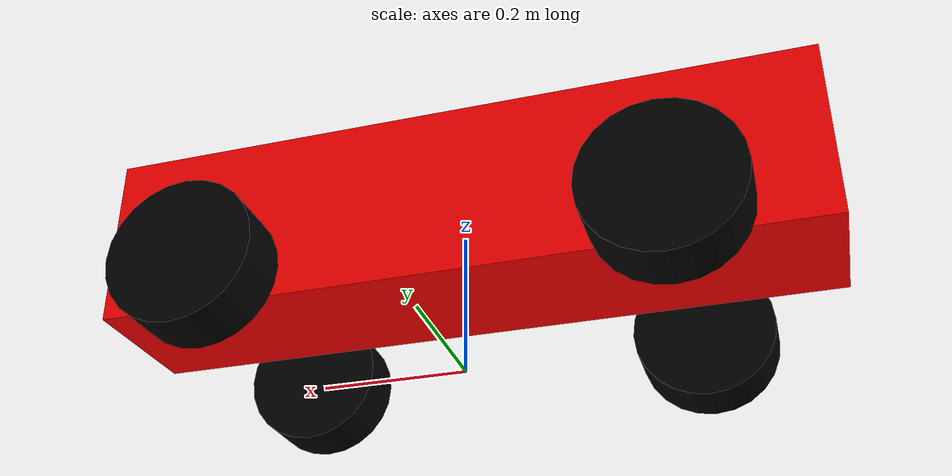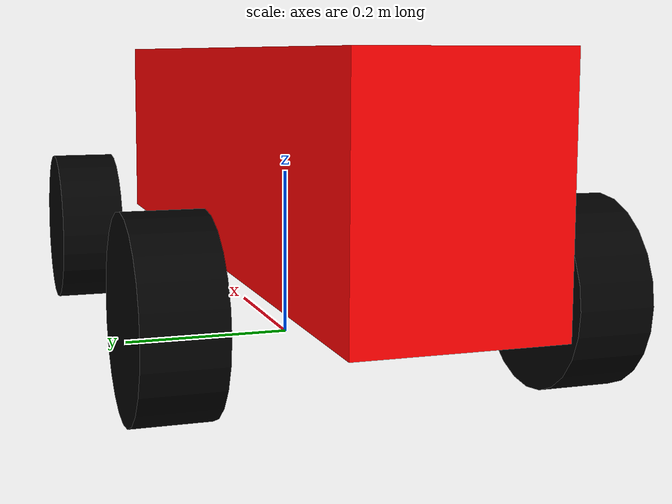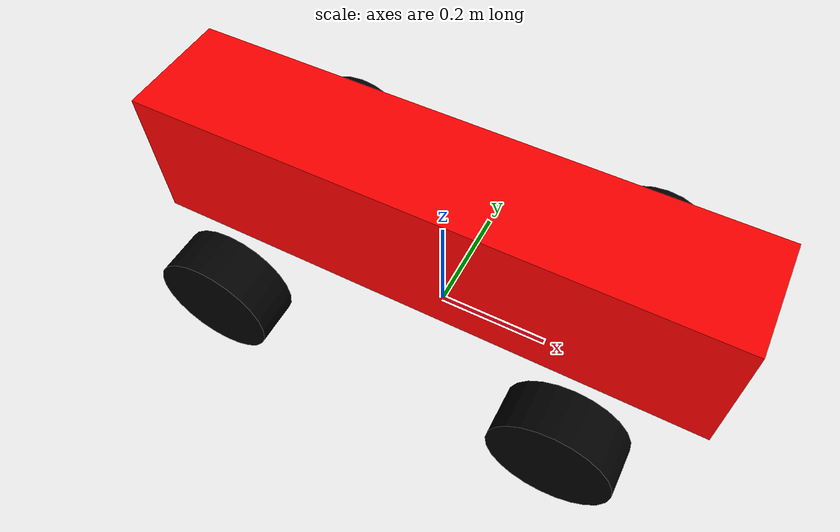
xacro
<?xml version="1.0"?>
<robot xmlns:xacro="http://www.ros.org/wiki/xacro" >

    <xacro:include filename="inertial_macros.xacro"/>

    <material name="white">
        <color rgba="1 1 1 1" />
    </material>

    <material name="red">
        <color rgba="1 0 0 1"/>
    </material>

    <material name="blue">
        <color rgba="0 0 1 1"/>
    </material>

    <material name="black">
        <color rgba="0 0 0 1"/>
    </material>

    <!-- BASE FOOTPRINT LINK -->

    <link name="footprint_link">

    </link>

    <!-- BASE LINK -->

    <joint name="base_joint" type="fixed">
        <parent link="footprint_link" />
        <child link="base_link" />
        <origin xyz="-0.3 0.0 0.1" rpy="0 0 0" />
    </joint>

    <link name="base_link">

    </link>

    <!-- CHASSIS LINK -->

    <joint name="chassis_joint" type="fixed">
        <parent link="base_link"/>
        <child link="chassis"/>
        <origin xyz="0.3 0 0.125"/>
    </joint>

    <link name="chassis">
        <visual>
            <geometry>
                <box size="1 0.2 0.25"/>
            </geometry>
            <material name="red"/>
        </visual>
        <collision>
            <geometry>
                <box size="1 0.2 0.25"/>
            </geometry>
        </collision>
        <xacro:inertial_box mass="20" x="1" y="0.2" z="0.25">
            <origin xyz="0 0 0" rpy="0 0 0"/>
        </xacro:inertial_box>
    </link>

    <gazebo reference="chassis">
        <material>Gazebo/Red</material>
        <mu1>0.5</mu1>
        <mu2>0.5</mu2>
    </gazebo>

    <!-- FRONT LEFT WHEEL -->

    <!-- steering -->

    <joint name="front_left_steering_joint" type="revolute">
        <parent link="base_link"/>
        <child link="left_steering_link"/>
        <origin xyz="0.6 0.21 0" rpy="0 0 0"/>
        <axis xyz="0 0 1"/>
        <limit lower="-${pi/8}" upper="${pi/8}" effort="20" velocity="5"/> <!-- TODO -->
    </joint>

    <link name="left_steering_link">
        <xacro:inertial_cylinder mass="0.01" radius="0.1" length="0.08">
            <origin xyz="0 0 0" rpy="0 0 0"/>
        </xacro:inertial_cylinder>
    </link>

    <!-- rotation -->

    <joint name="front_left_wheel_joint" type="continuous">
        <parent link="left_steering_link"/>
        <child link="front_left_wheel"/>
        <origin xyz="0 0 0" rpy="${pi/2} 0 0"/>
        <axis xyz="0 0 -1"/>
        <dynamics friction="0.8" damping="0.5" /> <!-- TODO -->
        <limit lower="-3.14159" upper="3.14159" effort="0" velocity="1" /> <!-- TODO -->
    </joint>

    <link name="front_left_wheel">
        <visual>
            <origin xyz="0 0 0" rpy="0 0 0"/>
            <geometry>
                <cylinder radius="0.1" length="0.08"/>
            </geometry>
            <material name="black"/>
        </visual>
        <collision>
            <origin xyz="0 0 0" rpy="0 0 0"/>
            <geometry>
                <cylinder radius="0.1" length="0.08"/>
            </geometry>
        </collision>
        <xacro:inertial_cylinder mass="1" length="0.08" radius="0.1">
            <origin xyz="0 0 0" rpy="0 0 0"/>
        </xacro:inertial_cylinder>
    </link>

    <gazebo reference="front_left_wheel">
        <material>Gazebo/Black</material>
        <mu1>5</mu1> <!-- TODO -->
        <mu2>5</mu2> <!-- TODO -->
    </gazebo>

    <!-- FRONT RIGHT WHEEL -->

    <!-- steering -->

    <joint name="front_right_steering_joint" type="revolute">
        <parent link="base_link"/>
        <child link="right_steering_link"/>
        <origin xyz="0.6 -0.21 0" rpy="0 0 0"/>
        <axis xyz="0 0 1"/>
        <limit lower="-${pi/8}" upper="${pi/8}" effort="20" velocity="5"/> <!-- TODO -->
    </joint>

    <link name="right_steering_link">
        <xacro:inertial_cylinder mass="0.01" radius="0.1" length="0.08">
            <origin xyz="0 0 0" rpy="0 0 0"/>
        </xacro:inertial_cylinder>
    </link>

    <!-- rotation -->

    <joint name="front_right_wheel_joint" type="continuous">
        <parent link="right_steering_link"/>
        <child link="front_right_wheel"/>
        <origin xyz="0 0 0" rpy="-${pi/2} 0 0"/>
        <axis xyz="0 0 1"/>
        <dynamics friction="0.8" damping="0.5" /> <!-- TODO -->
        <limit lower="-3.14159" upper="3.14159" effort="0" velocity="1" /> <!-- TODO -->
    </joint>

    <link name="front_right_wheel">
        <visual>
            <origin xyz="0 0 0" rpy="0 0 0"/>
            <geometry>
                <cylinder radius="0.1" length="0.08"/>
            </geometry>
            <material name="black"/>
        </visual>
        <collision>
            <origin xyz="0 0 0" rpy="0 0 0"/>
            <geometry>
                <cylinder radius="0.1" length="0.08"/>
            </geometry>
        </collision>
        <xacro:inertial_cylinder mass="1" length="0.08" radius="0.1">
            <origin xyz="0 0 0" rpy="0 0 0"/>
        </xacro:inertial_cylinder>
    </link>

    <gazebo reference="front_right_wheel">
        <material>Gazebo/Black</material>
        <mu1>5</mu1> <!-- TODO -->
        <mu2>5</mu2> <!-- TODO -->
    </gazebo>

    <!-- REAR LEFT WHEEL -->

    <!-- rotation -->

    <joint name="rear_left_wheel_joint" type="continuous">
        <parent link="base_link"/>
        <child link="rear_left_wheel"/>
        <origin xyz="0 0.21 0" rpy="${pi/2} 0 0"/>
        <axis xyz="0 0 -1"/>
        <dynamics friction="0.8" damping="0.5" /> <!-- TODO -->
        <limit lower="-3.14159" upper="3.14159" effort="200" velocity="1" /> <!-- TODO -->
    </joint>

    <link name="rear_left_wheel">
        <visual>
            <origin xyz="0 0 0" rpy="0 0 0"/>
            <geometry>
                <cylinder radius="0.1" length="0.08"/>
            </geometry>
            <material name="black"/>
        </visual>
        <collision>
            <origin xyz="0 0 0" rpy="0 0 0"/>
            <geometry>
                <cylinder radius="0.1" length="0.08"/>
            </geometry>
        </collision>
        <xacro:inertial_cylinder mass="1" length="0.08" radius="0.1">
            <origin xyz="0 0 0" rpy="0 0 0"/>
        </xacro:inertial_cylinder>
    </link>

    <gazebo reference="rear_left_wheel">
        <material>Gazebo/Black</material>
        <mu1>10</mu1> <!-- TODO -->
        <mu2>10</mu2> <!-- TODO -->
    </gazebo>

    <!-- REAR RIGHT WHEEL -->

    <!-- rotation -->

    <joint name="rear_right_wheel_joint" type="continuous">
        <parent link="base_link"/>
        <child link="rear_right_wheel"/>
        <origin xyz="0 -0.21 0" rpy="-${pi/2} 0 0"/>
        <axis xyz="0 0 1"/>
        <dynamics friction="0.8" damping="0.5" /> <!-- TODO -->
        <limit lower="-3.14159" upper="3.14159" effort="200" velocity="1" /> <!-- TODO -->
    </joint>

    <link name="rear_right_wheel">
        <visual>
            <origin xyz="0 0 0" rpy="0 0 0"/>
            <geometry>
                <cylinder radius="0.1" length="0.08"/>
            </geometry>
            <material name="black"/>
        </visual>
        <collision>
            <origin xyz="0 0 0" rpy="0 0 0"/>
            <geometry>
                <cylinder radius="0.1" length="0.08"/>
            </geometry>
        </collision>
        <xacro:inertial_cylinder mass="1" length="0.08" radius="0.1">
            <origin xyz="0 0 0" rpy="0 0 0"/>
        </xacro:inertial_cylinder>
    </link>

    <gazebo reference="rear_right_wheel">
        <material>Gazebo/Black</material>
        <mu1>10</mu1> <!-- TODO -->
        <mu2>10</mu2> <!-- TODO -->
    </gazebo>

    <!-- VIRTUAL STEERING WHEEL -->

    <!-- TOCHECK -->

</robot>
